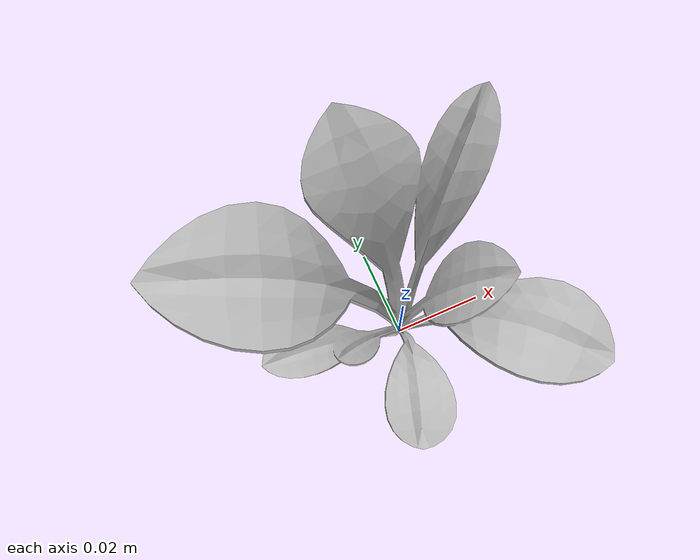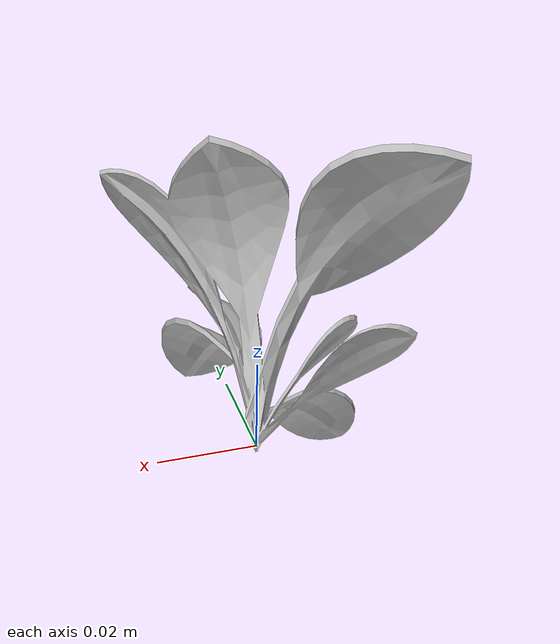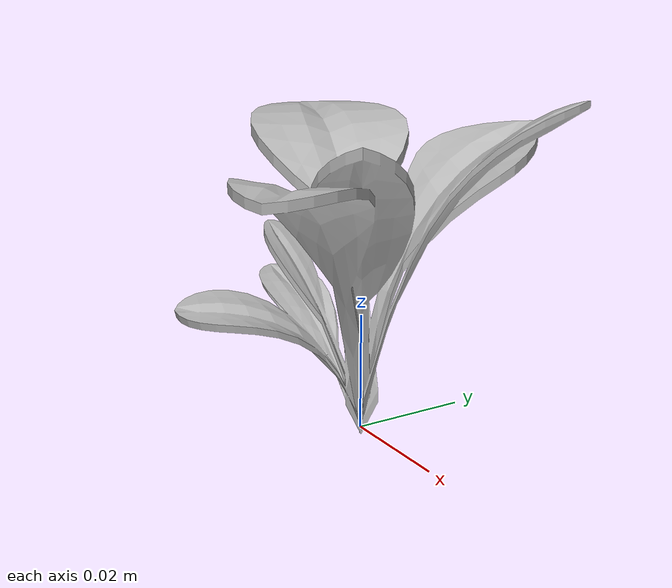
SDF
<sdf version="1.6">
  <model name="sugar_beet_18">
    <static>true</static>
    <link name="body">
      <visual name="visual">
        <geometry>
          <mesh>
            <uri>file:///sugar_beet_18/media/sugar_beet.dae</uri>
          </mesh>
        </geometry>
      </visual>
    </link>
  </model>
</sdf>
